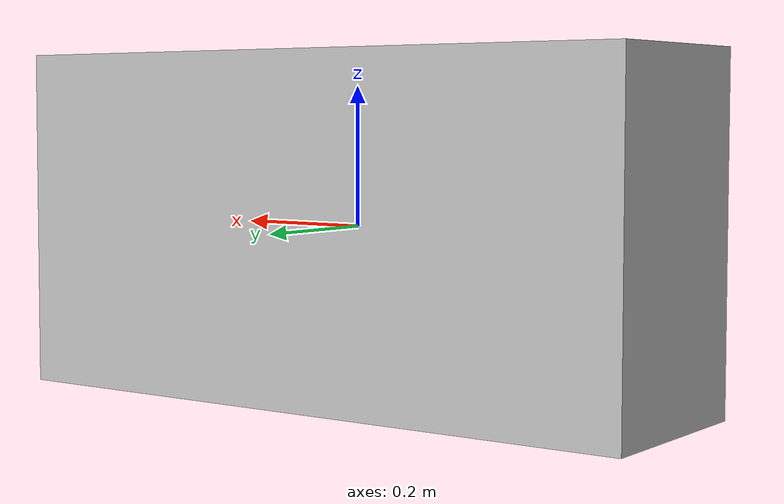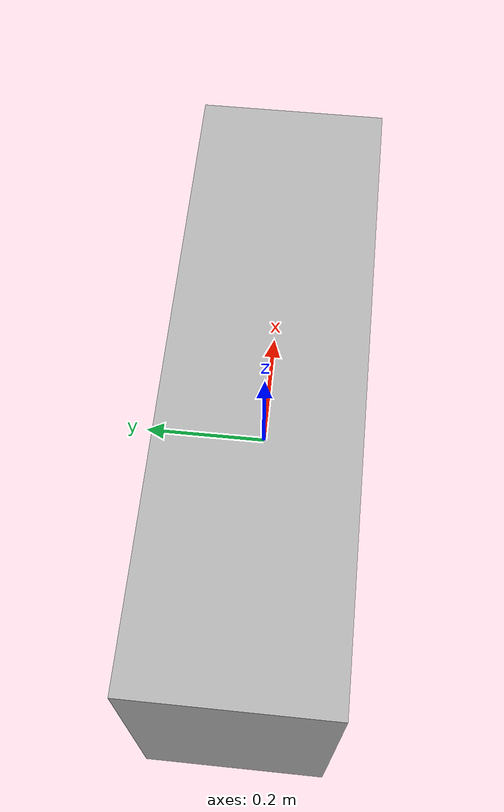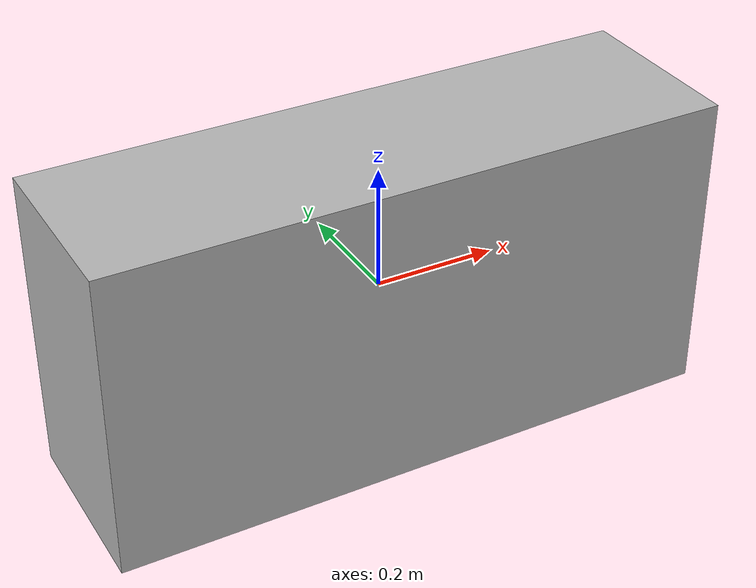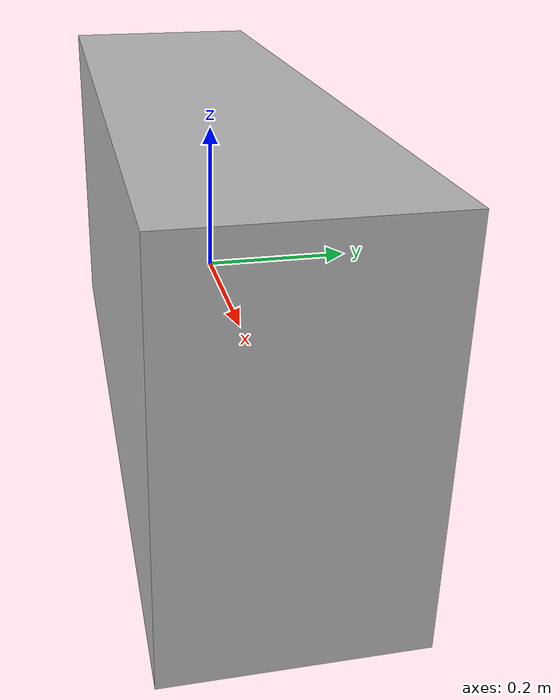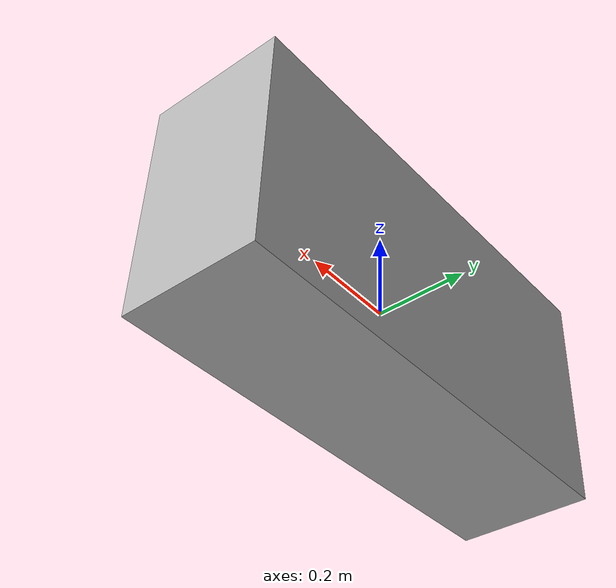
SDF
<!-- big_box as a test object for in hand pose estimation -->
<sdf version="1.6">
	<model name="big_box">
		<static>false</static>
		<link name="base_link">
			<collision name="collision">
				<geometry>
					<box>
						<size>1.0 0.3 0.5</size>
					</box>
				</geometry>
			</collision>
			<visual name="visual">
				<geometry>
					<box>
						<size>1.0 0.3 0.5</size>
					</box>
				</geometry>
			</visual>
			<inertial>
				<mass>10.0</mass>   <!-- Set the mass of the link to 10.0 kg -->
				<origin xyz="0 0 0" />
			</inertial>
		</link>
	</model>
</sdf>
